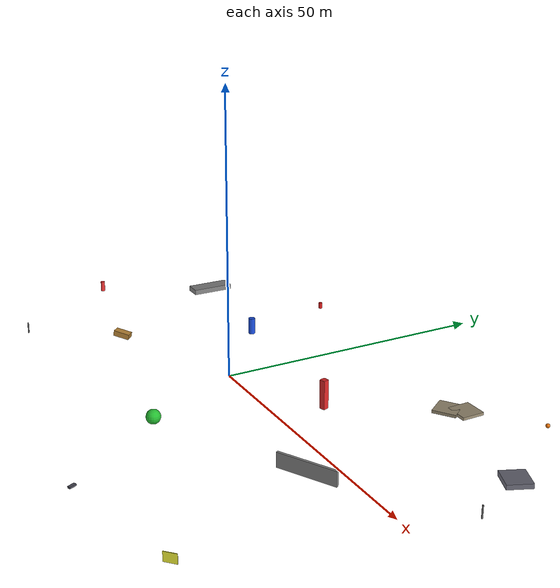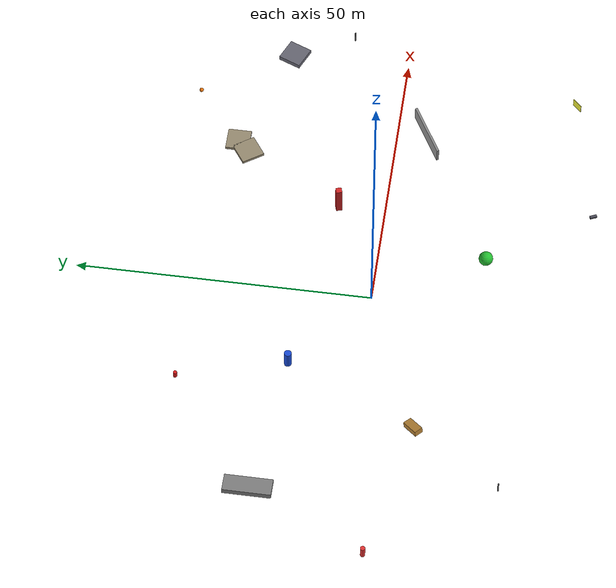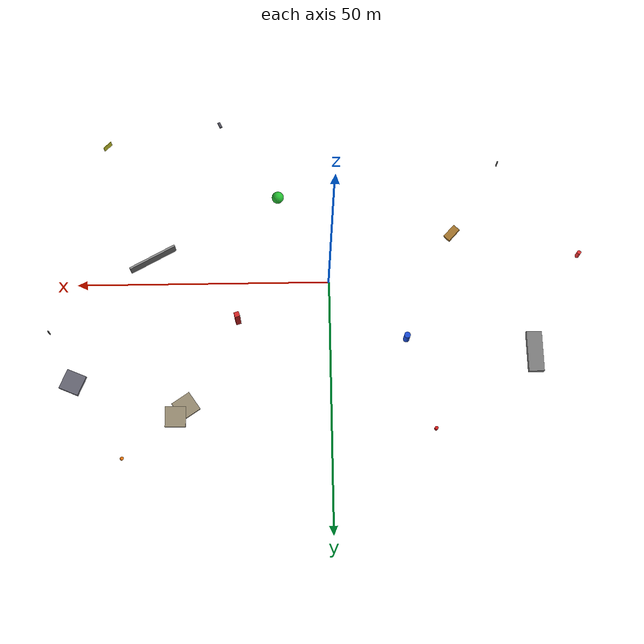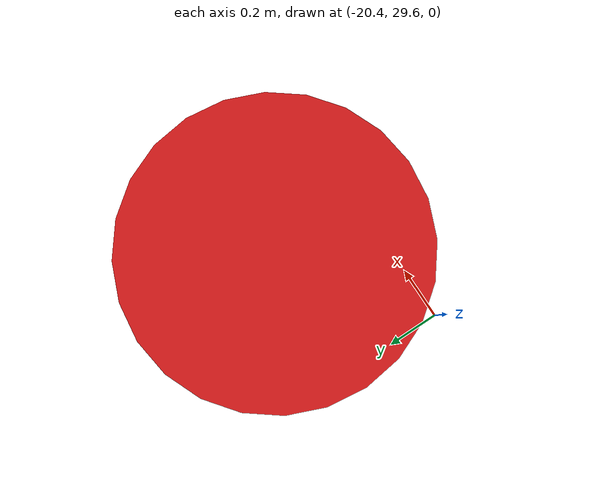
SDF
<sdf version="1.9">
 <world name="lidar_obstacle_course">
  <physics name="4ms" type="dart">
   <max_step_size>0.004</max_step_size>
   <real_time_factor>1.0</real_time_factor>
  </physics>
  <plugin filename="gz-sim-physics-system" name="gz::sim::systems::Physics"/>
  <plugin filename="gz-sim-user-commands-system" name="gz::sim::systems::UserCommands"/>
  <plugin filename="gz-sim-sensors-system" name="gz::sim::systems::Sensors">
   <render_engine>ogre2</render_engine>
  </plugin>
  <plugin filename="gz-sim-imu-system" name="gz::sim::systems::Imu"/>
  <plugin filename="gz-sim-navsat-system" name="gz::sim::systems::NavSat"/>
  <plugin filename="gz-sim-scene-broadcaster-system" name="gz::sim::systems::SceneBroadcaster"/>
  <plugin filename="ignition-gazebo-buoyancy-system" name="ignition::gazebo::systems::Buoyancy">
   <graded_buoyancy>
    <default_density>1025</default_density>
    <density_change><above_depth>0</above_depth><density>1</density></density_change>
   </graded_buoyancy>
   <enable>blueboat</enable>
  </plugin>
  <scene><ambient>0.8 0.85 0.9 1</ambient><background>0.5 0.65 0.85 1</background><grid>false</grid></scene>
  <spherical_coordinates>
   <surface_model>EARTH_WGS84</surface_model>
   <world_frame_orientation>ENU</world_frame_orientation>
   <latitude_deg>40.448417</latitude_deg>
   <longitude_deg>-86.867750</longitude_deg>
   <elevation>0.0</elevation>
   <heading_deg>0.0</heading_deg>
  </spherical_coordinates>
  <light type="directional" name="sun">
   <pose>0 0 20 0 0 0</pose>
   <diffuse>0.9 0.9 0.85 1</diffuse>
   <direction>-0.3 0.2 -1</direction>
  </light>
  <model name="lidar_pylon_red">
   <static>true</static>
   <pose>18 8 2.5 0 0 0.3</pose>
   <link name="link">
    <collision name="collision"><geometry><box><size>1.0 1.0 5.0</size></box></geometry></collision>
    <visual name="visual">
     <geometry><box><size>1.0 1.0 5.0</size></box></geometry>
     <material><ambient>0.85 0.15 0.15 1</ambient><diffuse>0.85 0.15 0.15 1</diffuse></material>
    </visual>
   </link>
  </model>
  <model name="lidar_cylinder_blue">
   <static>true</static>
   <pose>-15 12 1.5 0 0 0</pose>
   <link name="link">
    <collision name="collision">
     <geometry><cylinder><radius>0.6</radius><length>3.0</length></cylinder></geometry>
    </collision>
    <visual name="visual">
     <geometry><cylinder><radius>0.6</radius><length>3.0</length></cylinder></geometry>
     <material><ambient>0.1 0.3 0.85 1</ambient><diffuse>0.1 0.3 0.85 1</diffuse></material>
    </visual>
   </link>
  </model>
  <model name="lidar_sphere_green">
   <static>true</static>
   <pose>10 -18 1.2 0 0 0</pose>
   <link name="link">
    <collision name="collision"><geometry><sphere><radius>1.2</radius></sphere></geometry></collision>
    <visual name="visual">
     <geometry><sphere><radius>1.2</radius></sphere></geometry>
     <material><ambient>0.15 0.75 0.2 1</ambient><diffuse>0.15 0.75 0.2 1</diffuse></material>
    </visual>
   </link>
  </model>
  <model name="lidar_wall_segment">
   <static>true</static>
   <pose>35 -5 1.25 0 0 0.5</pose>
   <link name="link">
    <collision name="collision"><geometry><box><size>10.0 0.4 2.5</size></box></geometry></collision>
    <visual name="visual">
     <geometry><box><size>10.0 0.4 2.5</size></box></geometry>
     <material><ambient>0.55 0.55 0.55 1</ambient><diffuse>0.55 0.55 0.55 1</diffuse></material>
    </visual>
   </link>
  </model>
  <model name="lidar_ramp_block">
   <static>true</static>
   <pose>-25 -10 0.5 0 0.2 0.8</pose>
   <link name="link">
    <collision name="collision"><geometry><box><size>3.0 1.5 1.0</size></box></geometry></collision>
    <visual name="visual">
     <geometry><box><size>3.0 1.5 1.0</size></box></geometry>
     <material><ambient>0.7 0.5 0.2 1</ambient><diffuse>0.7 0.5 0.2 1</diffuse></material>
    </visual>
   </link>
  </model>
  <model name="lidar_low_platform">
   <static>true</static>
   <pose>50 20 0.4 0 0 -0.4</pose>
   <link name="link">
    <collision name="collision"><geometry><box><size>4.0 4.0 0.8</size></box></geometry></collision>
    <visual name="visual">
     <geometry><box><size>4.0 4.0 0.8</size></box></geometry>
     <material><ambient>0.4 0.4 0.45 1</ambient><diffuse>0.4 0.4 0.45 1</diffuse></material>
    </visual>
   </link>
  </model>
  <model name="dock_block_north">
   <static>true</static>
   <pose>28 25 0.25 0 0 0.6</pose>
   <link name="link">
    <collision name="collision"><geometry><box><size>4.0 4.0 0.5</size></box></geometry></collision>
    <visual name="visual">
     <geometry><box><size>4.0 4.0 0.5</size></box></geometry>
     <material><ambient>0.6 0.55 0.45 1</ambient><diffuse>0.6 0.55 0.45 1</diffuse></material>
    </visual>
   </link>
  </model>
  <model name="dock_block_north_leg">
   <static>true</static>
   <pose>30 27 0.25 0 0 1.57</pose>
   <link name="link">
    <collision name="collision"><geometry><box><size>4.0 4.0 0.5</size></box></geometry></collision>
    <visual name="visual">
     <geometry><box><size>4.0 4.0 0.5</size></box></geometry>
     <material><ambient>0.6 0.55 0.45 1</ambient><diffuse>0.6 0.55 0.45 1</diffuse></material>
    </visual>
   </link>
  </model>
  <model name="dock_para_west">
   <static>true</static>
   <pose>-40 15 0.5 0 0 1.57</pose>
   <link name="link">
    <collision name="collision"><geometry><box><size>8.0 3.0 1.0</size></box></geometry></collision>
    <visual name="visual">
     <geometry><box><size>8.0 3.0 1.0</size></box></geometry>
     <material><ambient>0.5 0.5 0.5 1</ambient><diffuse>0.5 0.5 0.5 1</diffuse></material>
    </visual>
   </link>
  </model>
  <model name="placard_east">
   <static>true</static>
   <pose>45 -30 1.0 0 0 -0.8</pose>
   <link name="link">
    <collision name="collision"><geometry><box><size>0.1 2.0 1.5</size></box></geometry></collision>
    <visual name="visual">
     <geometry><box><size>0.1 2.0 1.5</size></box></geometry>
     <material><ambient>0.9 0.9 0.2 1</ambient><diffuse>0.9 0.9 0.2 1</diffuse></material>
    </visual>
   </link>
  </model>
  <model name="roboboat_obstacle">
   <static>true</static>
   <pose>22 -35 0.15 0 0 2.0</pose>
   <link name="link">
    <collision name="collision"><geometry><box><size>1.2 0.5 0.3</size></box></geometry></collision>
    <visual name="visual">
     <geometry><box><size>1.2 0.5 0.3</size></box></geometry>
     <material><ambient>0.3 0.3 0.35 1</ambient><diffuse>0.3 0.3 0.35 1</diffuse></material>
    </visual>
   </link>
  </model>
  <model name="post_mooring_a">
   <static>true</static>
   <pose>-35 -25 1.0 0 0 0.2</pose>
   <link name="link">
    <collision name="collision">
     <geometry><cylinder><radius>0.12</radius><length>2.0</length></cylinder></geometry>
    </collision>
    <visual name="visual">
     <geometry><cylinder><radius>0.12</radius><length>2.0</length></cylinder></geometry>
     <material><ambient>0.35 0.35 0.35 1</ambient><diffuse>0.35 0.35 0.35 1</diffuse></material>
    </visual>
   </link>
  </model>
  <model name="post_mooring_b">
   <static>true</static>
   <pose>55 10 1.0 0 0 -0.5</pose>
   <link name="link">
    <collision name="collision">
     <geometry><cylinder><radius>0.12</radius><length>2.0</length></cylinder></geometry>
    </collision>
    <visual name="visual">
     <geometry><cylinder><radius>0.12</radius><length>2.0</length></cylinder></geometry>
     <material><ambient>0.35 0.35 0.35 1</ambient><diffuse>0.35 0.35 0.35 1</diffuse></material>
    </visual>
   </link>
  </model>
  <model name="robotx_light_buoy">
   <static>true</static>
   <pose>-50 -5 1.0 0 0 0</pose>
   <link name="link">
    <collision name="collision">
     <geometry><cylinder><radius>0.4</radius><length>2.0</length></cylinder></geometry>
    </collision>
    <visual name="visual">
     <geometry><cylinder><radius>0.4</radius><length>2.0</length></cylinder></geometry>
     <material><ambient>0.9 0.2 0.2 1</ambient><diffuse>0.9 0.2 0.2 1</diffuse></material>
    </visual>
   </link>
  </model>
  <model name="mb_marker_buoy_red">
   <static>true</static>
   <pose>-20 30 0.55 0 0 0</pose>
   <link name="link">
    <collision name="collision">
     <geometry><cylinder><radius>0.325</radius><length>1.1</length></cylinder></geometry>
    </collision>
    <visual name="visual">
     <geometry><cylinder><radius>0.325</radius><length>1.1</length></cylinder></geometry>
     <material><ambient>0.85 0.1 0.1 1</ambient><diffuse>0.85 0.1 0.1 1</diffuse></material>
    </visual>
   </link>
  </model>
  <model name="mb_round_buoy_orange">
   <static>true</static>
   <pose>40 35 0.35 0 0 0</pose>
   <link name="link">
    <collision name="collision"><geometry><sphere><radius>0.35</radius></sphere></geometry></collision>
    <visual name="visual">
     <geometry><sphere><radius>0.35</radius></sphere></geometry>
     <material><ambient>0.9 0.45 0.05 1</ambient><diffuse>0.9 0.45 0.05 1</diffuse></material>
    </visual>
   </link>
  </model>
 </world>
</sdf>
